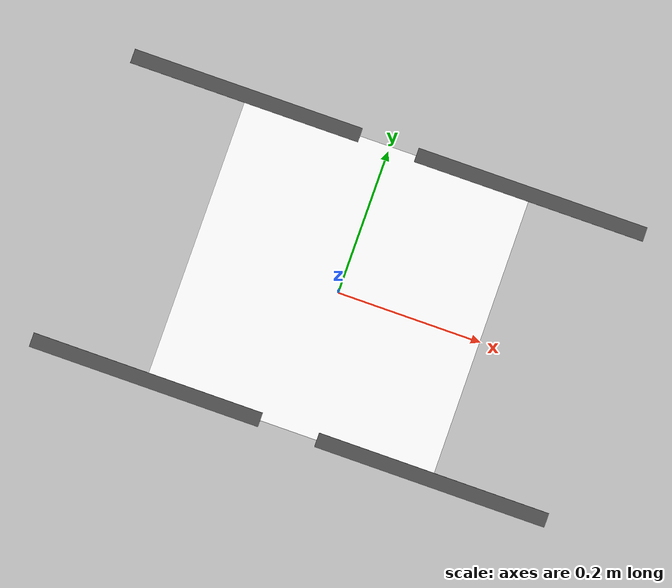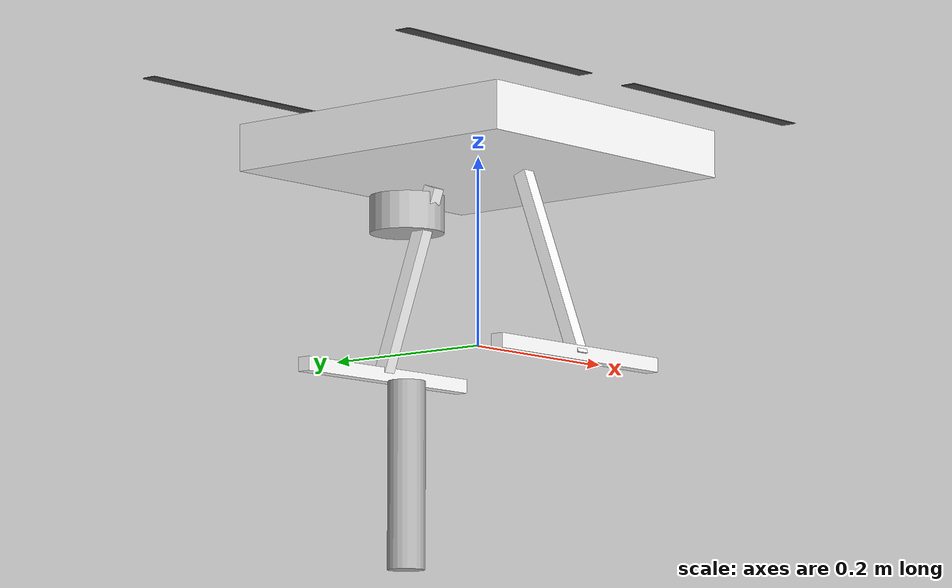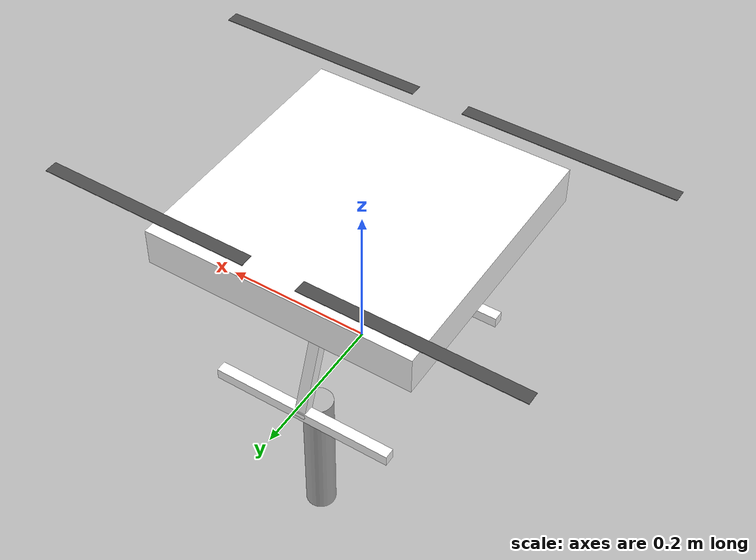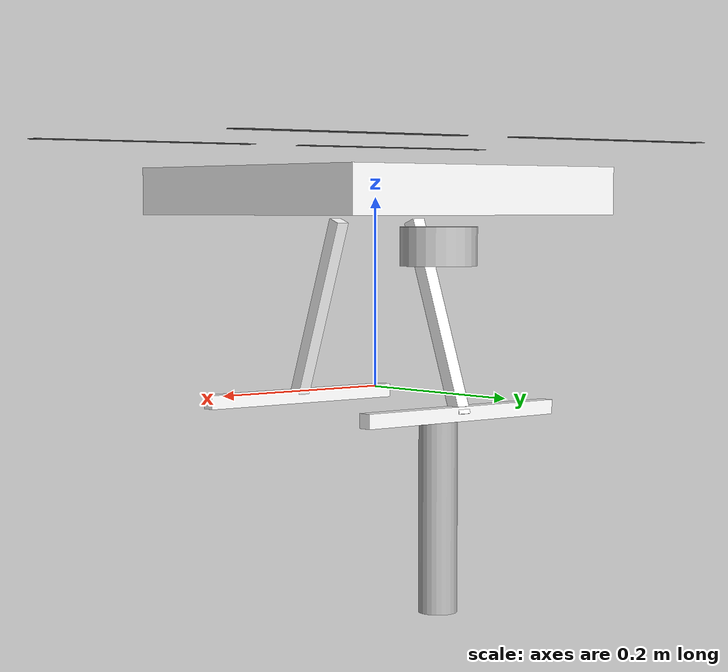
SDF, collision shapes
<?xml version="1.0" encoding="UTF-8"?>
<sdf version='1.9'>
  <model name='x500arm_base'>
    <pose>0 0 .2 0 0 0</pose>
    <self_collide>false</self_collide>
    <static>false</static>
    <link name="base_link">
      <inertial>
        <mass>1.65</mass>
        <inertia>
          <ixx>0.02166666666666667</ixx>
          <ixy>0</ixy>
          <ixz>0</ixz>
          <iyy>0.02166666666666667</iyy>
          <iyz>0</iyz>
          <izz>0.04000000000000001</izz>
        </inertia>
      </inertial>
      <gravity>true</gravity>
      <velocity_decay />
      <visual name="base_link_visual">
        <pose>0 0 .025 0 0 3.141592654</pose>
        <geometry>
          <mesh>
            <scale>1 1 1</scale>
            <uri>model://x500arm_base/meshes/NXP-HGD-CF.dae</uri>
          </mesh>
        </geometry>
      </visual>
      <visual name="5010_motor_base_0">
        <pose>0.174 0.174 .032 0 0 -.45</pose>
        <geometry>
          <mesh>
            <scale>1 1 1</scale>
            <uri>model://x500arm_base/meshes/5010Base.dae</uri>
          </mesh>
        </geometry>
      </visual>
      <visual name="5010_motor_base_1">
        <pose>-0.174 0.174 .032 0 0 -.45</pose>
        <geometry>
          <mesh>
            <scale>1 1 1</scale>
            <uri>model://x500arm_base/meshes/5010Base.dae</uri>
          </mesh>
        </geometry>
      </visual>
      <visual name="5010_motor_base_2">
        <pose>0.174 -0.174 .032 0 0 -.45</pose>
        <geometry>
          <mesh>
            <scale>1 1 1</scale>
            <uri>model://x500arm_base/meshes/5010Base.dae</uri>
          </mesh>
        </geometry>
      </visual>
      <visual name="5010_motor_base_3">
        <pose>-0.174 -0.174 .032 0 0 -.45</pose>
        <geometry>
          <mesh>
            <scale>1 1 1</scale>
            <uri>model://x500arm_base/meshes/5010Base.dae</uri>
          </mesh>
        </geometry>
      </visual>
      <visual name="NXP_FMUK66_FRONT">
        <pose>0.047 .001 .043 1 0 1.57</pose>
        <cast_shadows>false</cast_shadows>
        <geometry>
          <plane>
            <normal>0 0 1</normal>
            <size>.013 .007</size>
          </plane>
        </geometry>
        <material>
          <diffuse>1.0 1.0 1.0</diffuse>
          <specular>1.0 1.0 1.0</specular>
          <pbr>
            <metal>
              <albedo_map>model://x500arm_base/materials/textures/nxp.png</albedo_map>
            </metal>
          </pbr>
        </material>
      </visual>
      <visual name="NXP_FMUK66_TOP">
        <pose>-0.023 0 .0515 0 0 -1.57</pose>
        <cast_shadows>false</cast_shadows>
        <geometry>
          <plane>
            <normal>0 0 1</normal>
            <size>.013 .007</size>
          </plane>
        </geometry>
        <material>
          <diffuse>1.0 1.0 1.0</diffuse>
          <specular>1.0 1.0 1.0</specular>
          <pbr>
            <metal>
              <albedo_map>model://x500arm_base/materials/textures/nxp.png</albedo_map>
            </metal>
          </pbr>
        </material>
      </visual>
      <visual name="RDDRONE_FMUK66_TOP">
        <pose>-.03 0 .0515 0 0 -1.57</pose>
        <cast_shadows>false</cast_shadows>
        <geometry>
          <plane>
            <normal>0 0 1</normal>
            <size>.032 .0034</size>
          </plane>
        </geometry>
        <material>
          <diffuse>1.0 1.0 1.0</diffuse>
          <specular>1.0 1.0 1.0</specular>
          <pbr>
            <metal>
              <albedo_map>model://x500arm_base/materials/textures/rd.png</albedo_map>
            </metal>
          </pbr>
        </material>
      </visual>
      <collision name="base_link_collision_0">
        <pose>0 0 .007 0 0 0</pose>
        <geometry>
          <box>
            <size>0.35355339059327373 0.35355339059327373 0.05</size>
          </box>
        </geometry>
        <surface>
          <contact>
            <ode>
              <min_depth>0.001</min_depth>
              <max_vel>0</max_vel>
            </ode>
          </contact>
          <friction>
            <ode />
          </friction>
        </surface>
      </collision>
      <collision name="base_link_collision_1">
        <pose>0 -0.098 -.123 -0.35 0 0</pose>
        <geometry>
          <box>
            <size>0.015 0.015 0.21</size>
          </box>
        </geometry>
        <surface>
          <contact>
            <ode>
              <min_depth>0.001</min_depth>
              <max_vel>0</max_vel>
            </ode>
          </contact>
          <friction>
            <ode />
          </friction>
        </surface>
      </collision>
      <collision name="base_link_collision_2">
        <pose>0 0.098 -.123 0.35 0 0</pose>
        <geometry>
          <box>
            <size>0.015 0.015 0.21</size>
          </box>
        </geometry>
        <surface>
          <contact>
            <ode>
              <min_depth>0.001</min_depth>
              <max_vel>0</max_vel>
            </ode>
          </contact>
          <friction>
            <ode />
          </friction>
        </surface>
      </collision>
      <collision name="base_link_collision_3">
        <pose>0 -0.132 -.2195 0 0 0</pose>
        <geometry>
          <box>
            <size>0.25 0.015 0.015</size>
          </box>
        </geometry>
        <surface>
          <contact>
            <ode>
              <min_depth>0.001</min_depth>
              <max_vel>0</max_vel>
            </ode>
          </contact>
          <friction>
            <ode />
          </friction>
        </surface>
      </collision>
      <collision name="base_link_collision_4">
        <pose>0 0.132 -.2195 0 0 0</pose>
        <geometry>
          <box>
            <size>0.25 0.015 0.015</size>
          </box>
        </geometry>
        <surface>
          <contact>
            <ode>
              <min_depth>0.001</min_depth>
              <max_vel>0</max_vel>
            </ode>
          </contact>
          <friction>
            <ode />
          </friction>
        </surface>
      </collision>
      <sensor name="air_pressure_sensor" type="air_pressure">
        <gz_frame_id>base_link</gz_frame_id>
        <always_on>1</always_on>
        <update_rate>50</update_rate>
        <air_pressure>
          <!-- Noise modeled after BMP390 -->
          <pressure>
            <noise type="gaussian">
              <mean>0</mean>
              <stddev>3</stddev>
            </noise>
          </pressure>
        </air_pressure>
      </sensor>
      <sensor name="magnetometer_sensor" type="magnetometer">
        <gz_frame_id>base_link</gz_frame_id>
        <always_on>1</always_on>
        <update_rate>100</update_rate>
        <magnetometer>
          <!-- TODO: update to fix units and coordinate system when we move past Harmonic -->
          <!-- See https://github.com/gazebosim/gz-sim/pull/2460 -->
          <!-- 3mgauss RMS: NOTE: noise is in tesla but sensor reports data in gauss -->
          <!-- Noise modeled after IIS2MDC -->
          <x>
            <noise type="gaussian">
              <stddev>0.0001</stddev>
            </noise>
          </x>
          <y>
            <noise type="gaussian">
              <stddev>0.0001</stddev>
            </noise>
          </y>
          <z>
            <noise type="gaussian">
              <stddev>0.0001</stddev>
            </noise>
          </z>
        </magnetometer>
      </sensor>
      <sensor name="imu_sensor" type="imu">
        <gz_frame_id>base_link</gz_frame_id>
        <always_on>1</always_on>
        <update_rate>250</update_rate>
        <imu>
          <angular_velocity>
            <!-- Noise modeled after IIM42653 -->
            <!-- 0.05 deg/s converted to rad/s -->
            <x>
              <noise type="gaussian">
                <mean>0.0</mean>
                <stddev>0.0008726646</stddev>
              </noise>
            </x>
            <y>
              <noise type="gaussian">
                <mean>0.0</mean>
                <stddev>0.0008726646</stddev>
              </noise>
            </y>
            <z>
              <noise type="gaussian">
                <mean>0.0</mean>
                <stddev>0.0008726646</stddev>
              </noise>
            </z>
          </angular_velocity>
          <linear_acceleration>
            <!-- Noise modeled after IIM42653 -->
            <!-- X & Y axis: 0.65 mg-rms converted to m/ss -->
            <x>
              <noise type="gaussian">
                <mean>0.0</mean>
                <stddev>0.00637</stddev>
              </noise>
            </x>
            <y>
              <noise type="gaussian">
                <mean>0.0</mean>
                <stddev>0.00637</stddev>
              </noise>
            </y>
            <!-- Z axis: 0.70 mg-rms converted to m/ss-->
            <z>
              <noise type="gaussian">
                <mean>0.0</mean>
                <stddev>0.00686</stddev>
              </noise>
            </z>
          </linear_acceleration>
        </imu>
      </sensor>
      <sensor name="navsat_sensor" type="navsat">
        <gz_frame_id>base_link</gz_frame_id>
        <always_on>1</always_on>
        <update_rate>30</update_rate>
      </sensor>
    </link>
    <link name="rotor_0">
      <gravity>true</gravity>
      <self_collide>false</self_collide>
      <velocity_decay />
      <pose>0.174 -0.174 0.06 0 0 0</pose>
      <inertial>
        <mass>0.016076923076923075</mass>
        <inertia>
          <ixx>3.8464910483993325e-07</ixx>
          <iyy>2.6115851691700804e-05</iyy>
          <izz>2.649858234714004e-05</izz>
        </inertia>
      </inertial>
      <visual name="rotor_0_visual">
        <pose>-0.022 -0.14638461538461536 -0.016 0 0 0</pose>
        <geometry>
          <mesh>
            <scale>0.8461538461538461 0.8461538461538461 0.8461538461538461</scale>
            <uri>model://x500arm_base/meshes/1345_prop_ccw.stl</uri>
          </mesh>
        </geometry>
        <material>
          <script>
            <name>Gazebo/DarkGrey</name>
            <uri>file://media/materials/scripts/gazebo.material</uri>
          </script>
        </material>
      </visual>
      <visual name="rotor_0_visual_motor_bell">
        <pose>0 0 -.032 0 0 0</pose>
        <geometry>
          <mesh>
            <scale>1 1 1</scale>
            <uri>model://x500arm_base/meshes/5010Bell.dae</uri>
          </mesh>
        </geometry>
      </visual>
      <collision name="rotor_0_collision">
        <pose>0 0 0 0 0 0 </pose>
        <geometry>
          <box>
            <size>0.2792307692307692 0.016923076923076923 0.0008461538461538462</size>
          </box>
        </geometry>
        <surface>
          <contact>
            <ode>
              <min_depth>0.001</min_depth>
              <max_vel>0</max_vel>
            </ode>
          </contact>
          <friction>
            <ode />
          </friction>
        </surface>
      </collision>
    </link>
    <joint name="rotor_0_joint" type="revolute">
      <parent>base_link</parent>
      <child>rotor_0</child>
      <axis>
        <xyz>0 0 1</xyz>
        <limit>
          <lower>-1e+16</lower>
          <upper>1e+16</upper>
        </limit>
        <dynamics>
          <spring_reference>0</spring_reference>
          <spring_stiffness>0</spring_stiffness>
        </dynamics>
      </axis>
    </joint>
    <link name="rotor_1">
      <gravity>true</gravity>
      <self_collide>false</self_collide>
      <velocity_decay />
      <pose>-0.174 0.174 0.06 0 0 0</pose>
      <inertial>
        <mass>0.016076923076923075</mass>
        <inertia>
          <ixx>3.8464910483993325e-07</ixx>
          <iyy>2.6115851691700804e-05</iyy>
          <izz>2.649858234714004e-05</izz>
        </inertia>
      </inertial>
      <visual name="rotor_1_visual">
        <pose>-0.022 -0.14638461538461536 -0.016 0 0 0</pose>
        <geometry>
          <mesh>
            <scale>0.8461538461538461 0.8461538461538461 0.8461538461538461</scale>
            <uri>model://x500arm_base/meshes/1345_prop_ccw.stl</uri>
          </mesh>
        </geometry>
        <material>
          <script>
            <name>Gazebo/DarkGrey</name>
            <uri>file://media/materials/scripts/gazebo.material</uri>
          </script>
        </material>
      </visual>
      <visual name="rotor_1_visual_motor_top">
        <pose>0 0 -.032 0 0 0</pose>
        <geometry>
          <mesh>
            <scale>1 1 1</scale>
            <uri>model://x500arm_base/meshes/5010Bell.dae</uri>
          </mesh>
        </geometry>
      </visual>
      <collision name="rotor_1_collision">
        <pose>0 0 0 0 0 0 </pose>
        <geometry>
          <box>
            <size>0.2792307692307692 0.016923076923076923 0.0008461538461538462</size>
          </box>
        </geometry>
        <surface>
          <contact>
            <ode>
              <min_depth>0.001</min_depth>
              <max_vel>0</max_vel>
            </ode>
          </contact>
          <friction>
            <ode />
          </friction>
        </surface>
      </collision>
    </link>
    <joint name="rotor_1_joint" type="revolute">
      <parent>base_link</parent>
      <child>rotor_1</child>
      <axis>
        <xyz>0 0 1</xyz>
        <limit>
          <lower>-1e+16</lower>
          <upper>1e+16</upper>
        </limit>
        <dynamics>
          <spring_reference>0</spring_reference>
          <spring_stiffness>0</spring_stiffness>
        </dynamics>
      </axis>
    </joint>
    <link name="rotor_2">
      <gravity>true</gravity>
      <self_collide>false</self_collide>
      <velocity_decay />
      <pose>0.174 0.174 0.06 0 0 0</pose>
      <inertial>
        <mass>0.016076923076923075</mass>
        <inertia>
          <ixx>3.8464910483993325e-07</ixx>
          <iyy>2.6115851691700804e-05</iyy>
          <izz>2.649858234714004e-05</izz>
        </inertia>
      </inertial>
      <visual name="rotor_2_visual">
        <pose>-0.022 -0.14638461538461536 -0.016 0 0 0</pose>
        <geometry>
          <mesh>
            <scale>0.8461538461538461 0.8461538461538461 0.8461538461538461</scale>
            <uri>model://x500arm_base/meshes/1345_prop_cw.stl</uri>
          </mesh>
        </geometry>
        <material>
          <script>
            <name>Gazebo/DarkGrey</name>
            <uri>file://media/materials/scripts/gazebo.material</uri>
          </script>
        </material>
      </visual>
      <visual name="rotor_2_visual_motor_top">
        <pose>0 0 -.032 0 0 0</pose>
        <geometry>
          <mesh>
            <scale>1 1 1</scale>
            <uri>model://x500arm_base/meshes/5010Bell.dae</uri>
          </mesh>
        </geometry>
      </visual>
      <collision name="rotor_2_collision">
        <pose>0 0 0 0 0 0 </pose>
        <geometry>
          <box>
            <size>0.2792307692307692 0.016923076923076923 0.0008461538461538462</size>
          </box>
        </geometry>
        <surface>
          <contact>
            <ode>
              <min_depth>0.001</min_depth>
              <max_vel>0</max_vel>
            </ode>
          </contact>
          <friction>
            <ode />
          </friction>
        </surface>
      </collision>
    </link>
    <joint name="rotor_2_joint" type="revolute">
      <parent>base_link</parent>
      <child>rotor_2</child>
      <axis>
        <xyz>0 0 1</xyz>
        <limit>
          <lower>-1e+16</lower>
          <upper>1e+16</upper>
        </limit>
        <dynamics>
          <spring_reference>0</spring_reference>
          <spring_stiffness>0</spring_stiffness>
        </dynamics>
      </axis>
    </joint>
    <link name="rotor_3">
      <gravity>true</gravity>
      <self_collide>false</self_collide>
      <velocity_decay />
      <pose>-0.174 -0.174 0.06 0 0 0</pose>
      <inertial>
        <mass>0.016076923076923075</mass>
        <inertia>
          <ixx>3.8464910483993325e-07</ixx>
          <iyy>2.6115851691700804e-05</iyy>
          <izz>2.649858234714004e-05</izz>
        </inertia>
      </inertial>
      <visual name="rotor_3_visual">
        <pose>-0.022 -0.14638461538461536 -0.016 0 0 0</pose>
        <geometry>
          <mesh>
            <scale>0.8461538461538461 0.8461538461538461 0.8461538461538461</scale>
            <uri>model://x500arm_base/meshes/1345_prop_cw.stl</uri>
          </mesh>
        </geometry>
        <material>
          <script>
            <name>Gazebo/DarkGrey</name>
            <uri>file://media/materials/scripts/gazebo.material</uri>
          </script>
        </material>
      </visual>
      <visual name="rotor_3_visual_motor_top">
        <pose>0 0 -.032 0 0 0</pose>
        <geometry>
          <mesh>
            <scale>1 1 1</scale>
            <uri>model://x500arm_base/meshes/5010Bell.dae</uri>
          </mesh>
        </geometry>
      </visual>
      <collision name="rotor_3_collision">
        <pose>0 0 0 0 0 0 </pose>
        <geometry>
          <box>
            <size>0.2792307692307692 0.016923076923076923 0.0008461538461538462</size>
          </box>
        </geometry>
        <surface>
          <contact>
            <ode>
              <min_depth>0.001</min_depth>
              <max_vel>0</max_vel>
            </ode>
          </contact>
          <friction>
            <ode />
          </friction>
        </surface>
      </collision>
    </link>
    <joint name="rotor_3_joint" type="revolute">
      <parent>base_link</parent>
      <child>rotor_3</child>
      <axis>
        <xyz>0 0 1</xyz>
        <limit>
          <lower>-1e+16</lower>
          <upper>1e+16</upper>
        </limit>s
        <dynamics>
          <spring_reference>0</spring_reference>
          <spring_stiffness>0</spring_stiffness>
        </dynamics>
      </axis>
    </joint>

    <!--           MOUNTING JOINT (12cm Down)       -->

    <joint name="mount_joint" type="fixed">
      <parent>base_link</parent>
      <child>arm_base_link</child>
      <!-- SDF 1.9 allows declaring joint pose relative to parent or child -->
      <!-- Fixing the arm base 12cm below base_link -->
    </joint>

    <!--           2-DOF ARM DESCRIPTION            -->

    <link name="arm_base_link">
      <!-- Pose relative to the model origin (0 0 0) + offset (0 0 -0.12) -->
      <pose relative_to="base_link">0 0.1 -0.05 0 0 0</pose>
      <inertial>
        <pose>-0.019361 0.032893 -9.1547E-05 0 0 0</pose>
        <mass>0.052444</mass>
        <inertia>
          <ixx>1.5785E-05</ixx> <ixy>-2.5913E-07</ixy> <ixz>-6.0461E-09</ixz>
          <iyy>9.052E-06</iyy>  <iyz>-6.1966E-07</iyz> <izz>1.5108E-05</izz>
        </inertia>
      </inertial>
      <visual name="arm_base_visual">
        <geometry>
          <cylinder>
              <length>0.04</length>
              <radius>0.04</radius>
          </cylinder>
        </geometry>
        <material>
          <ambient>0.75 0.75 0.75 1</ambient>
          <diffuse>0.75 0.75 0.75 1</diffuse>
        </material>
      </visual>
      <collision name="arm_base_collision">
        <geometry>
          <cylinder>
              <length>0.04</length>
              <radius>0.04</radius>
          </cylinder>
        </geometry>
      </collision>
    </link>

    <link name="arm_link_1">
      <!-- Pose: Parent (arm_base) + Joint Offset (0 0 0.0012) -->
      <pose relative_to="arm_base_link">0 0 0.0012 0 0 0</pose>
      <inertial>
        <pose>-0.023624 -1.3508E-07 -0.068962 0 0 0</pose>
        <mass>0.037731</mass>
        <inertia>
          <ixx>1.7815E-05</ixx> <ixy>-3.5965E-12</ixy> <ixz>-1.8434E-07</ixz>
          <iyy>2.7209E-05</iyy> <iyz>-1.2773E-10</iyz> <izz>1.2586E-05</izz>
        </inertia>
      </inertial>
      <visual name="arm_link_1_visual">
        <pose>0 0 -0.09 0 0 0</pose>
        <geometry>
          <cylinder>
              <length>0.18</length>
              <radius>0.02</radius>
          </cylinder>
        </geometry>
        <material>
          <ambient>0.7 0.7 0.7 1</ambient>
          <diffuse>0.7 0.7 0.7 1</diffuse>
        </material>
      </visual>
      <!-- Note: You didn't have a collision in your URDF for link 1, usually good to add one -->
    </link>

    <joint name="joint_1" type="revolute">
      <parent>arm_base_link</parent>
      <child>arm_link_1</child>
      <axis>
        <xyz>-1 0 0</xyz>
        <limit>
          <lower>-1.57</lower>
          <upper>1.57</upper>
          <effort>100</effort>
          <velocity>100</velocity>
        </limit>
      </axis>
    </joint>

    <link name="arm_link_2">
      <!-- Pose: Parent (arm_link_1) + Joint Offset (0 0 -0.1795) -->
      <pose relative_to="arm_link_1">0 0 -0.1795 0 0 0</pose>
      <inertial>
        <pose>-0.023061 0.00033471 -0.097629 0 0 0</pose>
        <mass>0.56897</mass>
        <inertia>
          <ixx>0.00011176</ixx> <ixy>-2.2612E-09</ixy> <ixz>7.538E-07</ixz>
          <iyy>0.00012426</iyy> <iyz>1.022E-06</iyz>    <izz>5.0106E-05</izz>
        </inertia>
      </inertial>
      <visual name="arm_link_2_visual">
        <pose>0 0 -0.1 0 0 0</pose>
        <geometry>
          <cylinder>
              <length>0.20</length>
              <radius>0.02</radius>
          </cylinder>
        </geometry>
        <material>
          <ambient>0.7 0.7 0.7 1</ambient>
          <diffuse>0.7 0.7 0.7 1</diffuse>
        </material>
      </visual>
      <collision name="arm_link_2_collision">
        <pose>0 0 -0.1 0 0 0</pose>
        <geometry>
          <cylinder>
              <length>0.20</length>
              <radius>0.02</radius>
          </cylinder>
        </geometry>
      </collision>
    </link>

    <joint name="joint_2" type="revolute">
      <parent>arm_link_1</parent>
      <child>arm_link_2</child>
      <axis>
        <xyz>-1 0 0</xyz>
        <limit>
          <lower>-2.094</lower>
          <upper>2.094</upper>
          <effort>100</effort>
          <velocity>100</velocity>
        </limit>
      </axis>
    </joint>

    <plugin name="gz_ros2_control::GazeboSimROS2ControlPlugin" filename="libgz_ros2_control-system.so">
      <ros>
        <namespace>/</namespace>
      </ros>
      <parameters>/home/control-lab/torqu_control_ros2_ws/install/darm/share/darm/config/arm_control.yaml</parameters>
    </plugin>

  </model>
</sdf>
